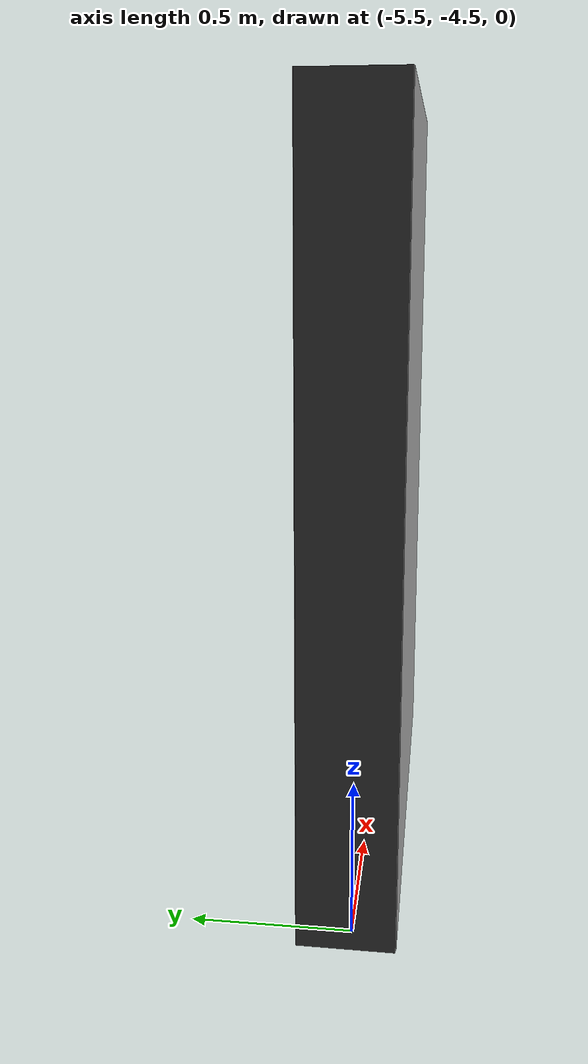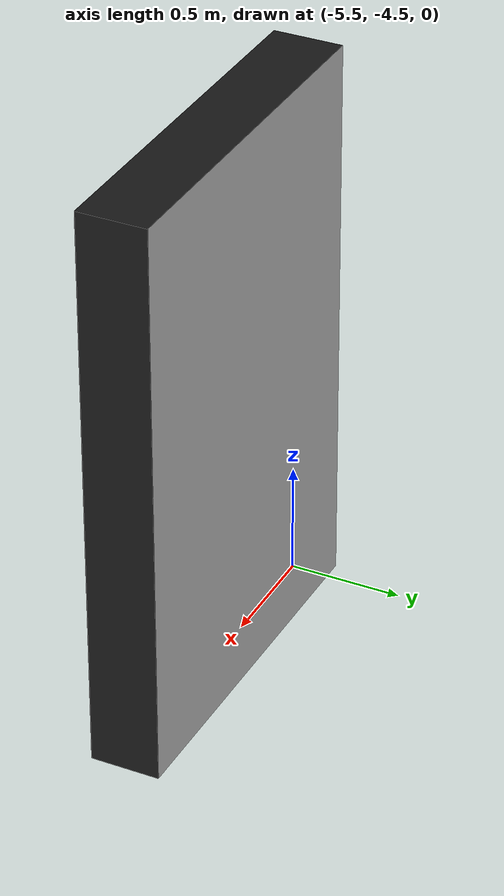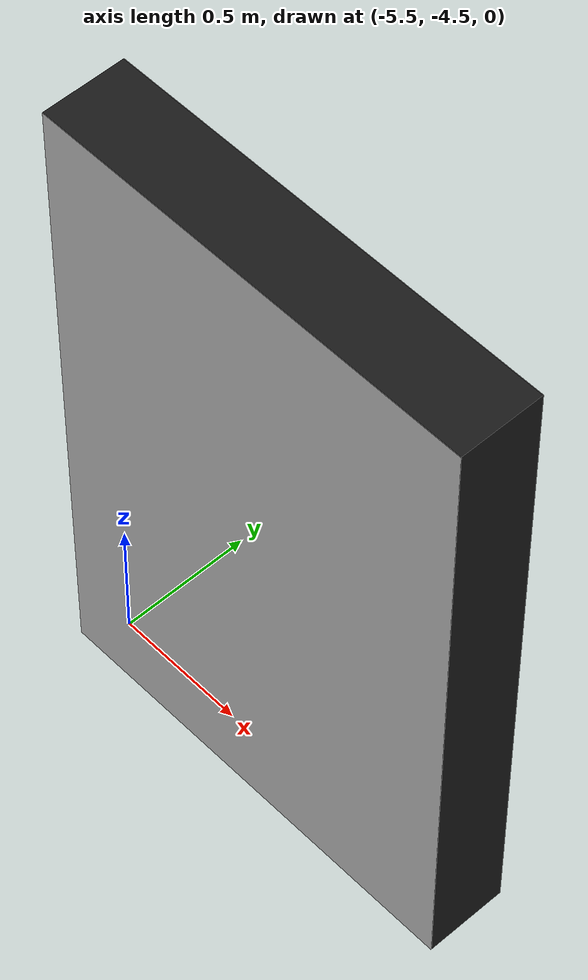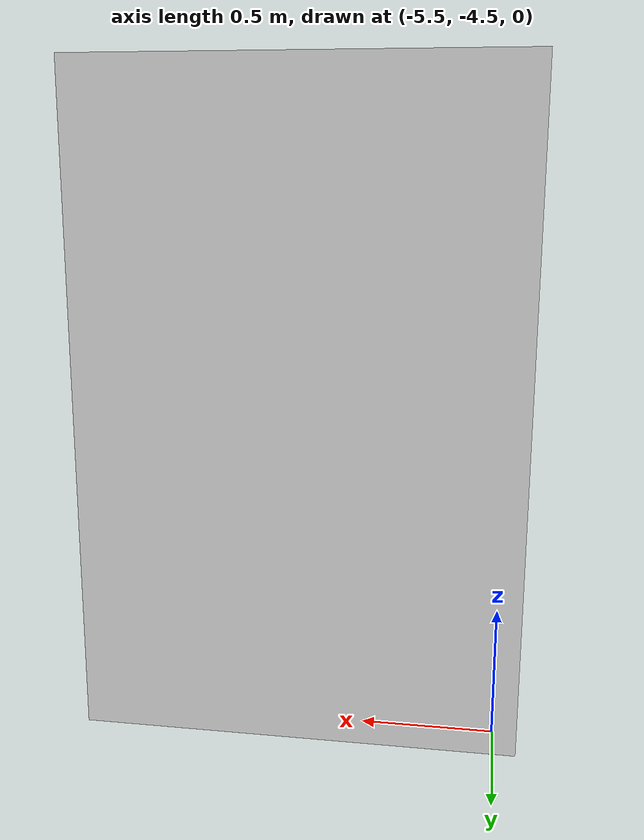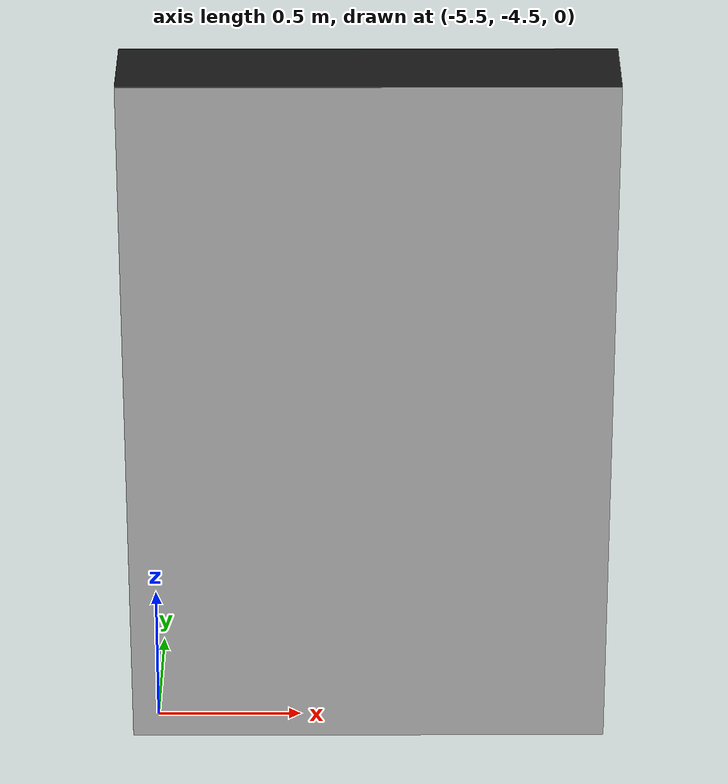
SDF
<?xml version='1.0'?>
<sdf version='1.7'>
  <model name='poster'>
    <link name='Wall_0'>
      <pose>-4.7604 -4.48691 0 0 -0 0</pose>
      <self_collide>0</self_collide>
      <enable_wind>0</enable_wind>
      <kinematic>0</kinematic>
      <visual name='Wall_0_Visual'>
        <pose>0 0 1.25 0 -0 0</pose>
        <geometry>
          <box>
            <size>1.65 0.3 2.5</size>
          </box>
        </geometry>
        <material>
          <ambient>0.1 0.1 0.1 1</ambient>
          <shader type='pixel'/>
          <script>
            <name>ModelPreview_1::Wall_0::Wall_0_Visual_MATERIAL_</name>
            <uri>__default__</uri>
          </script>
        </material>
        <meta>
          <layer>0</layer>
        </meta>
        <transparency>0</transparency>
        <cast_shadows>1</cast_shadows>
      </visual>
      <visual name='Poster_Face_Visual'>
        <pose>0 0.151 1.25 0 -0 0</pose>
        <geometry>
          <box>
            <size>1.65 0.001 2.5</size>
          </box>
        </geometry>
        <material>
          <script>
            <uri>model://poster/materials/scripts/poster.material</uri>
            <uri>model://poster/materials/textures/poster.png</uri>
            <name>Poster/Image</name>
          </script>
          <shader type='pixel'/>
        </material>
        <transparency>0</transparency>
        <cast_shadows>1</cast_shadows>
      </visual>
      <visual name='Poster_Back_Visual'>
        <pose>0 -0.151 1.25 0 -0 3.14159</pose>
        <geometry>
          <box>
            <size>1.65 0.001 2.5</size>
          </box>
        </geometry>
        <material>
          <script>
            <uri>model://poster/materials/scripts/poster.material</uri>
            <uri>model://poster/materials/textures/poster.png</uri>
            <name>Poster/Image</name>
          </script>
          <shader type='pixel'/>
        </material>
        <transparency>0</transparency>
        <cast_shadows>1</cast_shadows>
      </visual>
      <collision name='Wall_0_Collision'>
        <laser_retro>0</laser_retro>
        <max_contacts>10</max_contacts>
        <pose>0 0 1.25 0 -0 0</pose>
        <geometry>
          <box>
            <size>1.65 0.3 2.5</size>
          </box>
        </geometry>
        <surface>
          <friction>
            <ode>
              <mu>1</mu>
              <mu2>1</mu2>
              <fdir1>0 0 0</fdir1>
              <slip1>0</slip1>
              <slip2>0</slip2>
            </ode>
            <torsional>
              <coefficient>1</coefficient>
              <patch_radius>0</patch_radius>
              <surface_radius>0</surface_radius>
              <use_patch_radius>1</use_patch_radius>
              <ode>
                <slip>0</slip>
              </ode>
            </torsional>
          </friction>
          <bounce>
            <restitution_coefficient>0</restitution_coefficient>
            <threshold>1e+06</threshold>
          </bounce>
          <contact>
            <collide_without_contact>0</collide_without_contact>
            <collide_without_contact_bitmask>1</collide_without_contact_bitmask>
            <collide_bitmask>1</collide_bitmask>
            <ode>
              <soft_cfm>0</soft_cfm>
              <soft_erp>0.2</soft_erp>
              <kp>1e+13</kp>
              <kd>1</kd>
              <max_vel>0.01</max_vel>
              <min_depth>0</min_depth>
            </ode>
            <bullet>
              <split_impulse>1</split_impulse>
              <split_impulse_penetration_threshold>-0.01</split_impulse_penetration_threshold>
              <soft_cfm>0</soft_cfm>
              <soft_erp>0.2</soft_erp>
              <kp>1e+13</kp>
              <kd>1</kd>
            </bullet>
          </contact>
        </surface>
      </collision>
    </link>
    <static>1</static>
    <allow_auto_disable>1</allow_auto_disable>
  </model>
</sdf>
